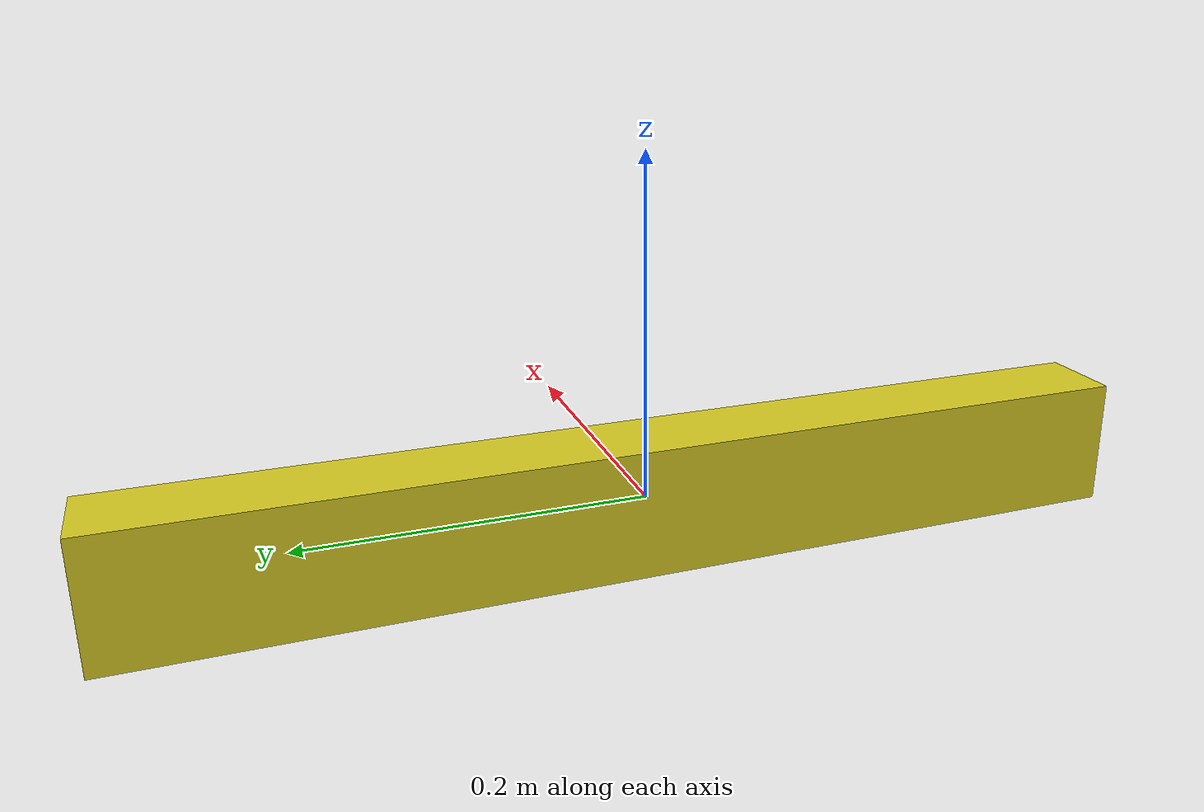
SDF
<?xml version='1.0'?>
<sdf version='1.7'>
  <model name='yellow_cuboid'>
    <link name='link_0'>
      <inertial>
        <mass>0.0023048</mass>
        <inertia>
          <ixx>7.09603e-05</ixx>
          <ixy>0</ixy>
          <ixz>0</ixz>
          <iyy>1.60344e-06</iyy>
          <iyz>0</iyz>
          <izz>7.03142e-05</izz>
        </inertia>
        <pose>0 0 0 0 -0 0</pose>
      </inertial>
      <pose>0 0 0 0 -0 0</pose>
      <visual name='visual'>
        <pose>0 0 0 0 -0 0</pose>
        <geometry>
          <box>
            <size>0.049923 0.602993 0.076525</size>
          </box>
        </geometry>
        <material>
          <lighting>1</lighting>
          <script>
            <uri>file://media/materials/scripts/gazebo.material</uri>
            <name>Gazebo/Yellow</name>
          </script>
          <shader type='pixel'/>
        </material>
        <transparency>0</transparency>
        <cast_shadows>1</cast_shadows>
      </visual>
      <collision name='collision'>
        <laser_retro>0</laser_retro>
        <max_contacts>10</max_contacts>
        <pose>0 0 0 0 -0 0</pose>
        <geometry>
          <box>
            <size>0.049923 0.602993 0.076525</size>
          </box>
        </geometry>
        <surface>
          <friction>
            <ode>
              <mu>1</mu>
              <mu2>1</mu2>
              <fdir1>0 0 0</fdir1>
              <slip1>0</slip1>
              <slip2>0</slip2>
            </ode>
            <torsional>
              <coefficient>1</coefficient>
              <patch_radius>0</patch_radius>
              <surface_radius>0</surface_radius>
              <use_patch_radius>1</use_patch_radius>
              <ode>
                <slip>0</slip>
              </ode>
            </torsional>
          </friction>
          <bounce>
            <restitution_coefficient>0</restitution_coefficient>
            <threshold>1e+06</threshold>
          </bounce>
          <contact>
            <collide_without_contact>0</collide_without_contact>
            <collide_without_contact_bitmask>1</collide_without_contact_bitmask>
            <collide_bitmask>1</collide_bitmask>
            <ode>
              <soft_cfm>0</soft_cfm>
              <soft_erp>0.2</soft_erp>
              <kp>1e+13</kp>
              <kd>1</kd>
              <max_vel>0.01</max_vel>
              <min_depth>0</min_depth>
            </ode>
            <bullet>
              <split_impulse>1</split_impulse>
              <split_impulse_penetration_threshold>-0.01</split_impulse_penetration_threshold>
              <soft_cfm>0</soft_cfm>
              <soft_erp>0.2</soft_erp>
              <kp>1e+13</kp>
              <kd>1</kd>
            </bullet>
          </contact>
        </surface>
      </collision>
    </link>
    <static>0</static>
    <allow_auto_disable>1</allow_auto_disable>
  </model>
</sdf>
